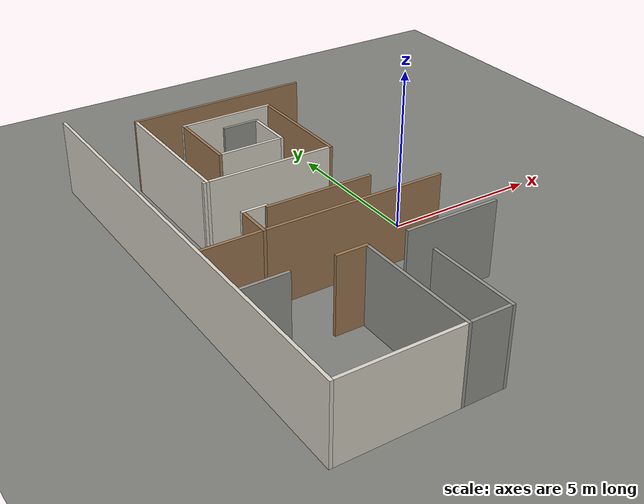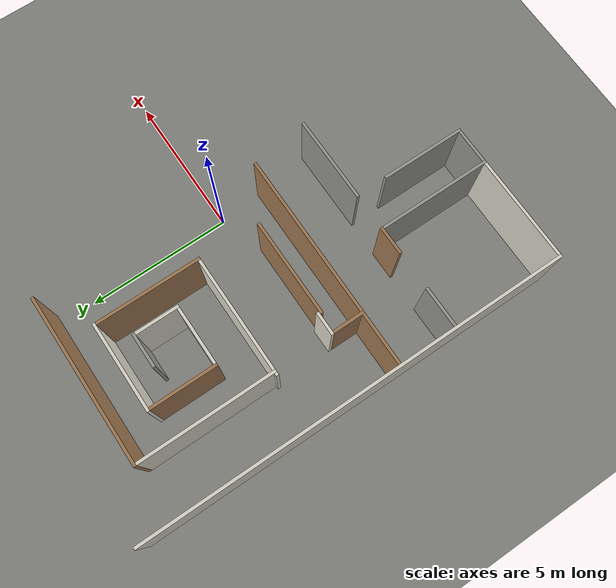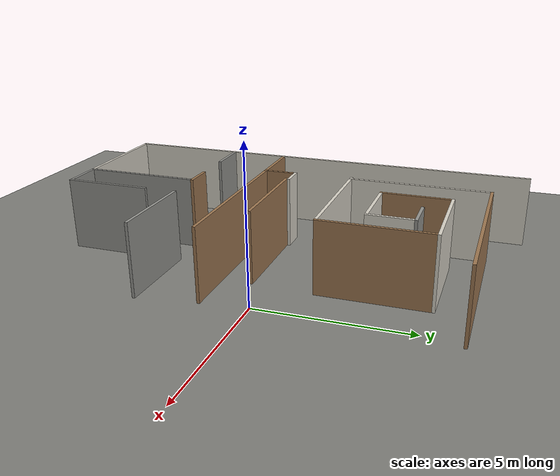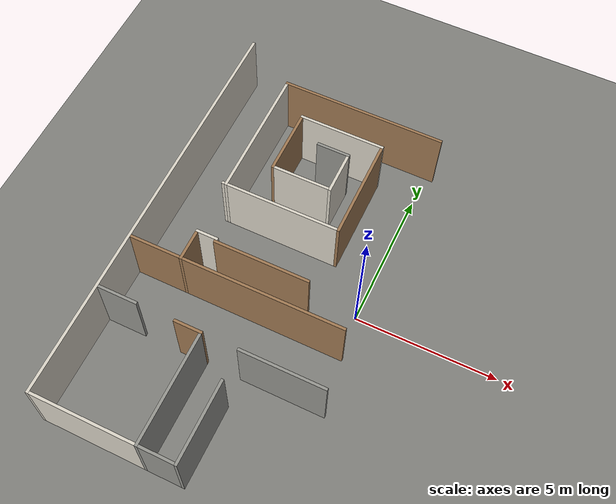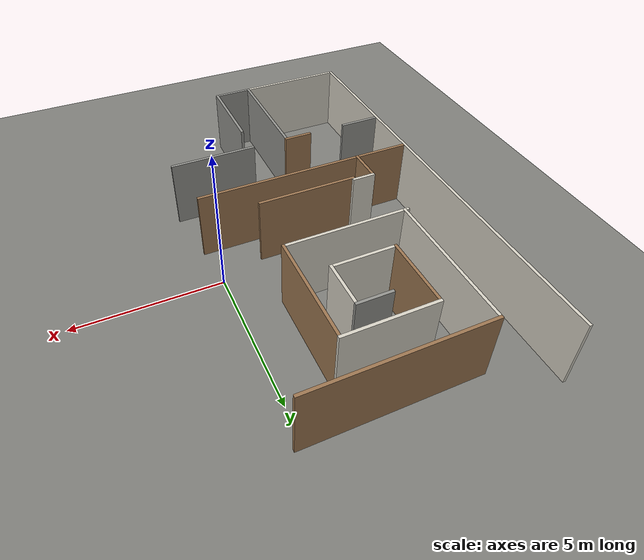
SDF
<sdf version="1.10">
 <world name="arena_world">
  <model name="ground_plane">
   <static>true</static>
   <link name="link">
    <collision name="collision">
     <geometry><plane><normal>0 0 1</normal><size>15 15</size></plane></geometry>
     <surface>
      <friction><ode><mu>0.80000000000000004</mu><mu2>0.80000000000000004</mu2></ode></friction>
      <contact><ode><kp>1000000000</kp><kd>1</kd></ode></contact>
     </surface>
    </collision>
    <visual name="visual">
     <geometry><plane><normal>0 0 1</normal><size>15 15</size></plane></geometry>
     <material>
      <ambient>0.449999988 0.449999988 0.439999998 1</ambient>
      <diffuse>0.5 0.5 0.479999989 1</diffuse>
      <specular>0.150000006 0.150000006 0.150000006 1</specular>
      <pbr><metal><roughness>0.95</roughness><metalness>0.0</metalness></metal></pbr>
     </material>
    </visual>
    <inertial>
     <mass>1</mass>
     <inertia><ixx>1</ixx><ixy>0</ixy><ixz>0</ixz><iyy>1</iyy><iyz>0</iyz><izz>1</izz></inertia>
    </inertial>
   </link>
  </model>
  <model name="wall_001">
   <static>true</static>
   <pose>-7.4500000000000002 -0.050000000000000003 1.22 0 0 0</pose>
   <link name="link">
    <collision name="collision">
     <geometry><box><size>0.10000000000000001 14.9 2.4399999999999999</size></box></geometry>
     <surface>
      <friction><ode><mu>0.69999999999999996</mu><mu2>0.69999999999999996</mu2></ode></friction>
      <contact>
       <ode><kp>1000000000</kp><kd>1</kd><max_vel>0.10000000000000001</max_vel><min_depth>0.001</min_depth></ode>
      </contact>
      <bounce><restitution_coefficient>0</restitution_coefficient><threshold>1000000</threshold></bounce>
     </surface>
    </collision>
    <visual name="visual">
     <geometry><box><size>0.10000000000000001 14.9 2.4399999999999999</size></box></geometry>
     <material>
      <ambient>0.819999993 0.800000012 0.75 1</ambient>
      <diffuse>0.850000024 0.829999983 0.779999971 1</diffuse>
      <specular>0.0500000007 0.0500000007 0.0500000007 1</specular>
      <pbr><metal><roughness>0.85</roughness><metalness>0.0</metalness></metal></pbr>
     </material>
    </visual>
    <inertial>
     <mass>1</mass>
     <inertia><ixx>1</ixx><ixy>0</ixy><ixz>0</ixz><iyy>1</iyy><iyz>0</iyz><izz>1</izz></inertia>
    </inertial>
   </link>
  </model>
  <model name="wall_003">
   <static>true</static>
   <pose>-2.6499999999999999 6.25 1.22 0 0 0</pose>
   <link name="link">
    <collision name="collision">
     <geometry><box><size>5.9000000000000004 0.10000000000000001 2.4399999999999999</size></box></geometry>
     <surface>
      <friction><ode><mu>0.69999999999999996</mu><mu2>0.69999999999999996</mu2></ode></friction>
      <contact>
       <ode><kp>1000000000</kp><kd>1</kd><max_vel>0.10000000000000001</max_vel><min_depth>0.001</min_depth></ode>
      </contact>
      <bounce><restitution_coefficient>0</restitution_coefficient><threshold>1000000</threshold></bounce>
     </surface>
    </collision>
    <visual name="visual">
     <geometry><box><size>5.9000000000000004 0.10000000000000001 2.4399999999999999</size></box></geometry>
     <material>
      <ambient>0.550000012 0.419999987 0.280000001 1</ambient>
      <diffuse>0.620000005 0.469999999 0.319999993 1</diffuse>
      <specular>0.0599999987 0.0599999987 0.0599999987 1</specular>
      <pbr><metal><roughness>0.7</roughness><metalness>0.0</metalness></metal></pbr>
     </material>
    </visual>
    <inertial>
     <mass>1</mass>
     <inertia><ixx>1</ixx><ixy>0</ixy><ixz>0</ixz><iyy>1</iyy><iyz>0</iyz><izz>1</izz></inertia>
    </inertial>
   </link>
  </model>
  <model name="wall_005">
   <static>true</static>
   <pose>-5.5499999999999998 3.8500000000000001 1.22 0 0 0</pose>
   <link name="link">
    <collision name="collision">
     <geometry><box><size>0.10000000000000001 4.7000000000000002 2.4399999999999999</size></box></geometry>
     <surface>
      <friction><ode><mu>0.69999999999999996</mu><mu2>0.69999999999999996</mu2></ode></friction>
      <contact>
       <ode><kp>1000000000</kp><kd>1</kd><max_vel>0.10000000000000001</max_vel><min_depth>0.001</min_depth></ode>
      </contact>
      <bounce><restitution_coefficient>0</restitution_coefficient><threshold>1000000</threshold></bounce>
     </surface>
    </collision>
    <visual name="visual">
     <geometry><box><size>0.10000000000000001 4.7000000000000002 2.4399999999999999</size></box></geometry>
     <material>
      <ambient>0.819999993 0.800000012 0.75 1</ambient>
      <diffuse>0.850000024 0.829999983 0.779999971 1</diffuse>
      <specular>0.0500000007 0.0500000007 0.0500000007 1</specular>
      <pbr><metal><roughness>0.85</roughness><metalness>0.0</metalness></metal></pbr>
     </material>
    </visual>
    <inertial>
     <mass>1</mass>
     <inertia><ixx>1</ixx><ixy>0</ixy><ixz>0</ixz><iyy>1</iyy><iyz>0</iyz><izz>1</izz></inertia>
    </inertial>
   </link>
  </model>
  <model name="wall_009">
   <static>true</static>
   <pose>-2.9500000000000002 5.1500000000000004 1.22 0 0 0</pose>
   <link name="link">
    <collision name="collision">
     <geometry><box><size>3.1000000000000001 0.10000000000000001 2.4399999999999999</size></box></geometry>
     <surface>
      <friction><ode><mu>0.69999999999999996</mu><mu2>0.69999999999999996</mu2></ode></friction>
      <contact>
       <ode><kp>1000000000</kp><kd>1</kd><max_vel>0.10000000000000001</max_vel><min_depth>0.001</min_depth></ode>
      </contact>
      <bounce><restitution_coefficient>0</restitution_coefficient><threshold>1000000</threshold></bounce>
     </surface>
    </collision>
    <visual name="visual">
     <geometry><box><size>3.1000000000000001 0.10000000000000001 2.4399999999999999</size></box></geometry>
     <material>
      <ambient>0.819999993 0.800000012 0.75 1</ambient>
      <diffuse>0.850000024 0.829999983 0.779999971 1</diffuse>
      <specular>0.0500000007 0.0500000007 0.0500000007 1</specular>
      <pbr><metal><roughness>0.85</roughness><metalness>0.0</metalness></metal></pbr>
     </material>
    </visual>
    <inertial>
     <mass>1</mass>
     <inertia><ixx>1</ixx><ixy>0</ixy><ixz>0</ixz><iyy>1</iyy><iyz>0</iyz><izz>1</izz></inertia>
    </inertial>
   </link>
  </model>
  <model name="wall_010">
   <static>true</static>
   <pose>-4.4500000000000002 3.9500000000000002 1.22 0 0 0</pose>
   <link name="link">
    <collision name="collision">
     <geometry><box><size>0.10000000000000001 2.2999999999999998 2.4399999999999999</size></box></geometry>
     <surface>
      <friction><ode><mu>0.69999999999999996</mu><mu2>0.69999999999999996</mu2></ode></friction>
      <contact>
       <ode><kp>1000000000</kp><kd>1</kd><max_vel>0.10000000000000001</max_vel><min_depth>0.001</min_depth></ode>
      </contact>
      <bounce><restitution_coefficient>0</restitution_coefficient><threshold>1000000</threshold></bounce>
     </surface>
    </collision>
    <visual name="visual">
     <geometry><box><size>0.10000000000000001 2.2999999999999998 2.4399999999999999</size></box></geometry>
     <material>
      <ambient>0.550000012 0.419999987 0.280000001 1</ambient>
      <diffuse>0.620000005 0.469999999 0.319999993 1</diffuse>
      <specular>0.0599999987 0.0599999987 0.0599999987 1</specular>
      <pbr><metal><roughness>0.7</roughness><metalness>0.0</metalness></metal></pbr>
     </material>
    </visual>
    <inertial>
     <mass>1</mass>
     <inertia><ixx>1</ixx><ixy>0</ixy><ixz>0</ixz><iyy>1</iyy><iyz>0</iyz><izz>1</izz></inertia>
    </inertial>
   </link>
  </model>
  <model name="wall_011">
   <static>true</static>
   <pose>-1.45 3.2999999999999998 1.22 0 0 0</pose>
   <link name="link">
    <collision name="collision">
     <geometry><box><size>0.10000000000000001 3.6000000000000001 2.4399999999999999</size></box></geometry>
     <surface>
      <friction><ode><mu>0.69999999999999996</mu><mu2>0.69999999999999996</mu2></ode></friction>
      <contact>
       <ode><kp>1000000000</kp><kd>1</kd><max_vel>0.10000000000000001</max_vel><min_depth>0.001</min_depth></ode>
      </contact>
      <bounce><restitution_coefficient>0</restitution_coefficient><threshold>1000000</threshold></bounce>
     </surface>
    </collision>
    <visual name="visual">
     <geometry><box><size>0.10000000000000001 3.6000000000000001 2.4399999999999999</size></box></geometry>
     <material>
      <ambient>0.550000012 0.419999987 0.280000001 1</ambient>
      <diffuse>0.620000005 0.469999999 0.319999993 1</diffuse>
      <specular>0.0599999987 0.0599999987 0.0599999987 1</specular>
      <pbr><metal><roughness>0.7</roughness><metalness>0.0</metalness></metal></pbr>
     </material>
    </visual>
    <inertial>
     <mass>1</mass>
     <inertia><ixx>1</ixx><ixy>0</ixy><ixz>0</ixz><iyy>1</iyy><iyz>0</iyz><izz>1</izz></inertia>
    </inertial>
   </link>
  </model>
  <model name="wall_015">
   <static>true</static>
   <pose>-2.8999999999999999 4.3499999999999996 1.22 0 0 0</pose>
   <link name="link">
    <collision name="collision">
     <geometry><box><size>1.2 0.10000000000000001 2.4399999999999999</size></box></geometry>
     <surface>
      <friction><ode><mu>0.69999999999999996</mu><mu2>0.69999999999999996</mu2></ode></friction>
      <contact>
       <ode><kp>1000000000</kp><kd>1</kd><max_vel>0.10000000000000001</max_vel><min_depth>0.001</min_depth></ode>
      </contact>
      <bounce><restitution_coefficient>0</restitution_coefficient><threshold>1000000</threshold></bounce>
     </surface>
    </collision>
    <visual name="visual">
     <geometry><box><size>1.2 0.10000000000000001 2.4399999999999999</size></box></geometry>
     <material>
      <ambient>0.550000012 0.550000012 0.529999971 1</ambient>
      <diffuse>0.579999983 0.579999983 0.560000002 1</diffuse>
      <specular>0.0799999982 0.0799999982 0.0799999982 1</specular>
      <pbr><metal><roughness>0.9</roughness><metalness>0.0</metalness></metal></pbr>
     </material>
    </visual>
    <inertial>
     <mass>1</mass>
     <inertia><ixx>1</ixx><ixy>0</ixy><ixz>0</ixz><iyy>1</iyy><iyz>0</iyz><izz>1</izz></inertia>
    </inertial>
   </link>
  </model>
  <model name="wall_016">
   <static>true</static>
   <pose>-2.3500000000000001 3.5499999999999998 1.22 0 0 0</pose>
   <link name="link">
    <collision name="collision">
     <geometry><box><size>0.10000000000000001 1.5 2.4399999999999999</size></box></geometry>
     <surface>
      <friction><ode><mu>0.69999999999999996</mu><mu2>0.69999999999999996</mu2></ode></friction>
      <contact>
       <ode><kp>1000000000</kp><kd>1</kd><max_vel>0.10000000000000001</max_vel><min_depth>0.001</min_depth></ode>
      </contact>
      <bounce><restitution_coefficient>0</restitution_coefficient><threshold>1000000</threshold></bounce>
     </surface>
    </collision>
    <visual name="visual">
     <geometry><box><size>0.10000000000000001 1.5 2.4399999999999999</size></box></geometry>
     <material>
      <ambient>0.819999993 0.800000012 0.75 1</ambient>
      <diffuse>0.850000024 0.829999983 0.779999971 1</diffuse>
      <specular>0.0500000007 0.0500000007 0.0500000007 1</specular>
      <pbr><metal><roughness>0.85</roughness><metalness>0.0</metalness></metal></pbr>
     </material>
    </visual>
    <inertial>
     <mass>1</mass>
     <inertia><ixx>1</ixx><ixy>0</ixy><ixz>0</ixz><iyy>1</iyy><iyz>0</iyz><izz>1</izz></inertia>
    </inertial>
   </link>
  </model>
  <model name="wall_017">
   <static>true</static>
   <pose>-3.3999999999999999 2.8500000000000001 1.22 0 0 0</pose>
   <link name="link">
    <collision name="collision">
     <geometry><box><size>2 0.10000000000000001 2.4399999999999999</size></box></geometry>
     <surface>
      <friction><ode><mu>0.69999999999999996</mu><mu2>0.69999999999999996</mu2></ode></friction>
      <contact>
       <ode><kp>1000000000</kp><kd>1</kd><max_vel>0.10000000000000001</max_vel><min_depth>0.001</min_depth></ode>
      </contact>
      <bounce><restitution_coefficient>0</restitution_coefficient><threshold>1000000</threshold></bounce>
     </surface>
    </collision>
    <visual name="visual">
     <geometry><box><size>2 0.10000000000000001 2.4399999999999999</size></box></geometry>
     <material>
      <ambient>0.819999993 0.800000012 0.75 1</ambient>
      <diffuse>0.850000024 0.829999983 0.779999971 1</diffuse>
      <specular>0.0500000007 0.0500000007 0.0500000007 1</specular>
      <pbr><metal><roughness>0.85</roughness><metalness>0.0</metalness></metal></pbr>
     </material>
    </visual>
    <inertial>
     <mass>1</mass>
     <inertia><ixx>1</ixx><ixy>0</ixy><ixz>0</ixz><iyy>1</iyy><iyz>0</iyz><izz>1</izz></inertia>
    </inertial>
   </link>
  </model>
  <model name="wall_019">
   <static>true</static>
   <pose>-5.6500000000000004 1.55 1.22 0 0 0</pose>
   <link name="link">
    <collision name="collision">
     <geometry><box><size>0.10000000000000001 0.10000000000000001 2.4399999999999999</size></box></geometry>
     <surface>
      <friction><ode><mu>0.69999999999999996</mu><mu2>0.69999999999999996</mu2></ode></friction>
      <contact>
       <ode><kp>1000000000</kp><kd>1</kd><max_vel>0.10000000000000001</max_vel><min_depth>0.001</min_depth></ode>
      </contact>
      <bounce><restitution_coefficient>0</restitution_coefficient><threshold>1000000</threshold></bounce>
     </surface>
    </collision>
    <visual name="visual">
     <geometry><box><size>0.10000000000000001 0.10000000000000001 2.4399999999999999</size></box></geometry>
     <material>
      <ambient>0.819999993 0.800000012 0.75 1</ambient>
      <diffuse>0.850000024 0.829999983 0.779999971 1</diffuse>
      <specular>0.0500000007 0.0500000007 0.0500000007 1</specular>
      <pbr><metal><roughness>0.85</roughness><metalness>0.0</metalness></metal></pbr>
     </material>
    </visual>
    <inertial>
     <mass>1</mass>
     <inertia><ixx>1</ixx><ixy>0</ixy><ixz>0</ixz><iyy>1</iyy><iyz>0</iyz><izz>1</izz></inertia>
    </inertial>
   </link>
  </model>
  <model name="wall_020">
   <static>true</static>
   <pose>-3.5 1.55 1.22 0 0 0</pose>
   <link name="link">
    <collision name="collision">
     <geometry><box><size>4 0.10000000000000001 2.4399999999999999</size></box></geometry>
     <surface>
      <friction><ode><mu>0.69999999999999996</mu><mu2>0.69999999999999996</mu2></ode></friction>
      <contact>
       <ode><kp>1000000000</kp><kd>1</kd><max_vel>0.10000000000000001</max_vel><min_depth>0.001</min_depth></ode>
      </contact>
      <bounce><restitution_coefficient>0</restitution_coefficient><threshold>1000000</threshold></bounce>
     </surface>
    </collision>
    <visual name="visual">
     <geometry><box><size>4 0.10000000000000001 2.4399999999999999</size></box></geometry>
     <material>
      <ambient>0.819999993 0.800000012 0.75 1</ambient>
      <diffuse>0.850000024 0.829999983 0.779999971 1</diffuse>
      <specular>0.0500000007 0.0500000007 0.0500000007 1</specular>
      <pbr><metal><roughness>0.85</roughness><metalness>0.0</metalness></metal></pbr>
     </material>
    </visual>
    <inertial>
     <mass>1</mass>
     <inertia><ixx>1</ixx><ixy>0</ixy><ixz>0</ixz><iyy>1</iyy><iyz>0</iyz><izz>1</izz></inertia>
    </inertial>
   </link>
  </model>
  <model name="wall_025">
   <static>true</static>
   <pose>-5.2000000000000002 -0.45000000000000001 1.22 0 0 0</pose>
   <link name="link">
    <collision name="collision">
     <geometry><box><size>0.80000000000000004 0.10000000000000001 2.4399999999999999</size></box></geometry>
     <surface>
      <friction><ode><mu>0.69999999999999996</mu><mu2>0.69999999999999996</mu2></ode></friction>
      <contact>
       <ode><kp>1000000000</kp><kd>1</kd><max_vel>0.10000000000000001</max_vel><min_depth>0.001</min_depth></ode>
      </contact>
      <bounce><restitution_coefficient>0</restitution_coefficient><threshold>1000000</threshold></bounce>
     </surface>
    </collision>
    <visual name="visual">
     <geometry><box><size>0.80000000000000004 0.10000000000000001 2.4399999999999999</size></box></geometry>
     <material>
      <ambient>0.819999993 0.800000012 0.75 1</ambient>
      <diffuse>0.850000024 0.829999983 0.779999971 1</diffuse>
      <specular>0.0500000007 0.0500000007 0.0500000007 1</specular>
      <pbr><metal><roughness>0.85</roughness><metalness>0.0</metalness></metal></pbr>
     </material>
    </visual>
    <inertial>
     <mass>1</mass>
     <inertia><ixx>1</ixx><ixy>0</ixy><ixz>0</ixz><iyy>1</iyy><iyz>0</iyz><izz>1</izz></inertia>
    </inertial>
   </link>
  </model>
  <model name="wall_026">
   <static>true</static>
   <pose>-5.5499999999999998 -1.05 1.22 0 0 0</pose>
   <link name="link">
    <collision name="collision">
     <geometry><box><size>0.10000000000000001 1.1000000000000001 2.4399999999999999</size></box></geometry>
     <surface>
      <friction><ode><mu>0.69999999999999996</mu><mu2>0.69999999999999996</mu2></ode></friction>
      <contact>
       <ode><kp>1000000000</kp><kd>1</kd><max_vel>0.10000000000000001</max_vel><min_depth>0.001</min_depth></ode>
      </contact>
      <bounce><restitution_coefficient>0</restitution_coefficient><threshold>1000000</threshold></bounce>
     </surface>
    </collision>
    <visual name="visual">
     <geometry><box><size>0.10000000000000001 1.1000000000000001 2.4399999999999999</size></box></geometry>
     <material>
      <ambient>0.550000012 0.419999987 0.280000001 1</ambient>
      <diffuse>0.620000005 0.469999999 0.319999993 1</diffuse>
      <specular>0.0599999987 0.0599999987 0.0599999987 1</specular>
      <pbr><metal><roughness>0.7</roughness><metalness>0.0</metalness></metal></pbr>
     </material>
    </visual>
    <inertial>
     <mass>1</mass>
     <inertia><ixx>1</ixx><ixy>0</ixy><ixz>0</ixz><iyy>1</iyy><iyz>0</iyz><izz>1</izz></inertia>
    </inertial>
   </link>
  </model>
  <model name="wall_027">
   <static>true</static>
   <pose>-3.2000000000000002 -0.55000000000000004 1.22 0 0 0</pose>
   <link name="link">
    <collision name="collision">
     <geometry><box><size>3.3999999999999999 0.10000000000000001 2.4399999999999999</size></box></geometry>
     <surface>
      <friction><ode><mu>0.69999999999999996</mu><mu2>0.69999999999999996</mu2></ode></friction>
      <contact>
       <ode><kp>1000000000</kp><kd>1</kd><max_vel>0.10000000000000001</max_vel><min_depth>0.001</min_depth></ode>
      </contact>
      <bounce><restitution_coefficient>0</restitution_coefficient><threshold>1000000</threshold></bounce>
     </surface>
    </collision>
    <visual name="visual">
     <geometry><box><size>3.3999999999999999 0.10000000000000001 2.4399999999999999</size></box></geometry>
     <material>
      <ambient>0.550000012 0.419999987 0.280000001 1</ambient>
      <diffuse>0.620000005 0.469999999 0.319999993 1</diffuse>
      <specular>0.0599999987 0.0599999987 0.0599999987 1</specular>
      <pbr><metal><roughness>0.7</roughness><metalness>0.0</metalness></metal></pbr>
     </material>
    </visual>
    <inertial>
     <mass>1</mass>
     <inertia><ixx>1</ixx><ixy>0</ixy><ixz>0</ixz><iyy>1</iyy><iyz>0</iyz><izz>1</izz></inertia>
    </inertial>
   </link>
  </model>
  <model name="wall_028">
   <static>true</static>
   <pose>-6.5 -1.55 1.22 0 0 0</pose>
   <link name="link">
    <collision name="collision">
     <geometry><box><size>1.8 0.10000000000000001 2.4399999999999999</size></box></geometry>
     <surface>
      <friction><ode><mu>0.69999999999999996</mu><mu2>0.69999999999999996</mu2></ode></friction>
      <contact>
       <ode><kp>1000000000</kp><kd>1</kd><max_vel>0.10000000000000001</max_vel><min_depth>0.001</min_depth></ode>
      </contact>
      <bounce><restitution_coefficient>0</restitution_coefficient><threshold>1000000</threshold></bounce>
     </surface>
    </collision>
    <visual name="visual">
     <geometry><box><size>1.8 0.10000000000000001 2.4399999999999999</size></box></geometry>
     <material>
      <ambient>0.550000012 0.419999987 0.280000001 1</ambient>
      <diffuse>0.620000005 0.469999999 0.319999993 1</diffuse>
      <specular>0.0599999987 0.0599999987 0.0599999987 1</specular>
      <pbr><metal><roughness>0.7</roughness><metalness>0.0</metalness></metal></pbr>
     </material>
    </visual>
    <inertial>
     <mass>1</mass>
     <inertia><ixx>1</ixx><ixy>0</ixy><ixz>0</ixz><iyy>1</iyy><iyz>0</iyz><izz>1</izz></inertia>
    </inertial>
   </link>
  </model>
  <model name="wall_029">
   <static>true</static>
   <pose>-2.6499999999999999 -1.55 1.22 0 0 0</pose>
   <link name="link">
    <collision name="collision">
     <geometry><box><size>5.7000000000000002 0.10000000000000001 2.4399999999999999</size></box></geometry>
     <surface>
      <friction><ode><mu>0.69999999999999996</mu><mu2>0.69999999999999996</mu2></ode></friction>
      <contact>
       <ode><kp>1000000000</kp><kd>1</kd><max_vel>0.10000000000000001</max_vel><min_depth>0.001</min_depth></ode>
      </contact>
      <bounce><restitution_coefficient>0</restitution_coefficient><threshold>1000000</threshold></bounce>
     </surface>
    </collision>
    <visual name="visual">
     <geometry><box><size>5.7000000000000002 0.10000000000000001 2.4399999999999999</size></box></geometry>
     <material>
      <ambient>0.550000012 0.419999987 0.280000001 1</ambient>
      <diffuse>0.620000005 0.469999999 0.319999993 1</diffuse>
      <specular>0.0599999987 0.0599999987 0.0599999987 1</specular>
      <pbr><metal><roughness>0.7</roughness><metalness>0.0</metalness></metal></pbr>
     </material>
    </visual>
    <inertial>
     <mass>1</mass>
     <inertia><ixx>1</ixx><ixy>0</ixy><ixz>0</ixz><iyy>1</iyy><iyz>0</iyz><izz>1</izz></inertia>
    </inertial>
   </link>
  </model>
  <model name="wall_032">
   <static>true</static>
   <pose>-6.7000000000000002 -3.5499999999999998 1.22 0 0 0</pose>
   <link name="link">
    <collision name="collision">
     <geometry><box><size>1.3999999999999999 0.10000000000000001 2.4399999999999999</size></box></geometry>
     <surface>
      <friction><ode><mu>0.69999999999999996</mu><mu2>0.69999999999999996</mu2></ode></friction>
      <contact>
       <ode><kp>1000000000</kp><kd>1</kd><max_vel>0.10000000000000001</max_vel><min_depth>0.001</min_depth></ode>
      </contact>
      <bounce><restitution_coefficient>0</restitution_coefficient><threshold>1000000</threshold></bounce>
     </surface>
    </collision>
    <visual name="visual">
     <geometry><box><size>1.3999999999999999 0.10000000000000001 2.4399999999999999</size></box></geometry>
     <material>
      <ambient>0.550000012 0.550000012 0.529999971 1</ambient>
      <diffuse>0.579999983 0.579999983 0.560000002 1</diffuse>
      <specular>0.0799999982 0.0799999982 0.0799999982 1</specular>
      <pbr><metal><roughness>0.9</roughness><metalness>0.0</metalness></metal></pbr>
     </material>
    </visual>
    <inertial>
     <mass>1</mass>
     <inertia><ixx>1</ixx><ixy>0</ixy><ixz>0</ixz><iyy>1</iyy><iyz>0</iyz><izz>1</izz></inertia>
    </inertial>
   </link>
  </model>
  <model name="wall_033">
   <static>true</static>
   <pose>-4.2000000000000002 -3.5499999999999998 1.22 0 0 0</pose>
   <link name="link">
    <collision name="collision">
     <geometry><box><size>1 0.10000000000000001 2.4399999999999999</size></box></geometry>
     <surface>
      <friction><ode><mu>0.69999999999999996</mu><mu2>0.69999999999999996</mu2></ode></friction>
      <contact>
       <ode><kp>1000000000</kp><kd>1</kd><max_vel>0.10000000000000001</max_vel><min_depth>0.001</min_depth></ode>
      </contact>
      <bounce><restitution_coefficient>0</restitution_coefficient><threshold>1000000</threshold></bounce>
     </surface>
    </collision>
    <visual name="visual">
     <geometry><box><size>1 0.10000000000000001 2.4399999999999999</size></box></geometry>
     <material>
      <ambient>0.550000012 0.419999987 0.280000001 1</ambient>
      <diffuse>0.620000005 0.469999999 0.319999993 1</diffuse>
      <specular>0.0599999987 0.0599999987 0.0599999987 1</specular>
      <pbr><metal><roughness>0.7</roughness><metalness>0.0</metalness></metal></pbr>
     </material>
    </visual>
    <inertial>
     <mass>1</mass>
     <inertia><ixx>1</ixx><ixy>0</ixy><ixz>0</ixz><iyy>1</iyy><iyz>0</iyz><izz>1</izz></inertia>
    </inertial>
   </link>
  </model>
  <model name="wall_034">
   <static>true</static>
   <pose>-1 -3.5499999999999998 1.22 0 0 0</pose>
   <link name="link">
    <collision name="collision">
     <geometry><box><size>3 0.10000000000000001 2.4399999999999999</size></box></geometry>
     <surface>
      <friction><ode><mu>0.69999999999999996</mu><mu2>0.69999999999999996</mu2></ode></friction>
      <contact>
       <ode><kp>1000000000</kp><kd>1</kd><max_vel>0.10000000000000001</max_vel><min_depth>0.001</min_depth></ode>
      </contact>
      <bounce><restitution_coefficient>0</restitution_coefficient><threshold>1000000</threshold></bounce>
     </surface>
    </collision>
    <visual name="visual">
     <geometry><box><size>3 0.10000000000000001 2.4399999999999999</size></box></geometry>
     <material>
      <ambient>0.550000012 0.550000012 0.529999971 1</ambient>
      <diffuse>0.579999983 0.579999983 0.560000002 1</diffuse>
      <specular>0.0799999982 0.0799999982 0.0799999982 1</specular>
      <pbr><metal><roughness>0.9</roughness><metalness>0.0</metalness></metal></pbr>
     </material>
    </visual>
    <inertial>
     <mass>1</mass>
     <inertia><ixx>1</ixx><ixy>0</ixy><ixz>0</ixz><iyy>1</iyy><iyz>0</iyz><izz>1</izz></inertia>
    </inertial>
   </link>
  </model>
  <model name="wall_038">
   <static>true</static>
   <pose>-3.75 -5.5499999999999998 1.22 0 0 0</pose>
   <link name="link">
    <collision name="collision">
     <geometry><box><size>0.10000000000000001 3.8999999999999999 2.4399999999999999</size></box></geometry>
     <surface>
      <friction><ode><mu>0.69999999999999996</mu><mu2>0.69999999999999996</mu2></ode></friction>
      <contact>
       <ode><kp>1000000000</kp><kd>1</kd><max_vel>0.10000000000000001</max_vel><min_depth>0.001</min_depth></ode>
      </contact>
      <bounce><restitution_coefficient>0</restitution_coefficient><threshold>1000000</threshold></bounce>
     </surface>
    </collision>
    <visual name="visual">
     <geometry><box><size>0.10000000000000001 3.8999999999999999 2.4399999999999999</size></box></geometry>
     <material>
      <ambient>0.550000012 0.550000012 0.529999971 1</ambient>
      <diffuse>0.579999983 0.579999983 0.560000002 1</diffuse>
      <specular>0.0799999982 0.0799999982 0.0799999982 1</specular>
      <pbr><metal><roughness>0.9</roughness><metalness>0.0</metalness></metal></pbr>
     </material>
    </visual>
    <inertial>
     <mass>1</mass>
     <inertia><ixx>1</ixx><ixy>0</ixy><ixz>0</ixz><iyy>1</iyy><iyz>0</iyz><izz>1</izz></inertia>
    </inertial>
   </link>
  </model>
  <model name="wall_040">
   <static>true</static>
   <pose>-2.4500000000000002 -6.0499999999999998 1.22 0 0 0</pose>
   <link name="link">
    <collision name="collision">
     <geometry><box><size>0.10000000000000001 2.8999999999999999 2.4399999999999999</size></box></geometry>
     <surface>
      <friction><ode><mu>0.69999999999999996</mu><mu2>0.69999999999999996</mu2></ode></friction>
      <contact>
       <ode><kp>1000000000</kp><kd>1</kd><max_vel>0.10000000000000001</max_vel><min_depth>0.001</min_depth></ode>
      </contact>
      <bounce><restitution_coefficient>0</restitution_coefficient><threshold>1000000</threshold></bounce>
     </surface>
    </collision>
    <visual name="visual">
     <geometry><box><size>0.10000000000000001 2.8999999999999999 2.4399999999999999</size></box></geometry>
     <material>
      <ambient>0.550000012 0.550000012 0.529999971 1</ambient>
      <diffuse>0.579999983 0.579999983 0.560000002 1</diffuse>
      <specular>0.0799999982 0.0799999982 0.0799999982 1</specular>
      <pbr><metal><roughness>0.9</roughness><metalness>0.0</metalness></metal></pbr>
     </material>
    </visual>
    <inertial>
     <mass>1</mass>
     <inertia><ixx>1</ixx><ixy>0</ixy><ixz>0</ixz><iyy>1</iyy><iyz>0</iyz><izz>1</izz></inertia>
    </inertial>
   </link>
  </model>
  <model name="wall_042">
   <static>true</static>
   <pose>-5.5999999999999996 -7.4500000000000002 1.22 0 0 0</pose>
   <link name="link">
    <collision name="collision">
     <geometry><box><size>3.6000000000000001 0.10000000000000001 2.4399999999999999</size></box></geometry>
     <surface>
      <friction><ode><mu>0.69999999999999996</mu><mu2>0.69999999999999996</mu2></ode></friction>
      <contact>
       <ode><kp>1000000000</kp><kd>1</kd><max_vel>0.10000000000000001</max_vel><min_depth>0.001</min_depth></ode>
      </contact>
      <bounce><restitution_coefficient>0</restitution_coefficient><threshold>1000000</threshold></bounce>
     </surface>
    </collision>
    <visual name="visual">
     <geometry><box><size>3.6000000000000001 0.10000000000000001 2.4399999999999999</size></box></geometry>
     <material>
      <ambient>0.819999993 0.800000012 0.75 1</ambient>
      <diffuse>0.850000024 0.829999983 0.779999971 1</diffuse>
      <specular>0.0500000007 0.0500000007 0.0500000007 1</specular>
      <pbr><metal><roughness>0.85</roughness><metalness>0.0</metalness></metal></pbr>
     </material>
    </visual>
    <inertial>
     <mass>1</mass>
     <inertia><ixx>1</ixx><ixy>0</ixy><ixz>0</ixz><iyy>1</iyy><iyz>0</iyz><izz>1</izz></inertia>
    </inertial>
   </link>
  </model>
  <model name="wall_043">
   <static>true</static>
   <pose>-3.1000000000000001 -7.4500000000000002 1.22 0 0 0</pose>
   <link name="link">
    <collision name="collision">
     <geometry><box><size>1.2 0.10000000000000001 2.4399999999999999</size></box></geometry>
     <surface>
      <friction><ode><mu>0.69999999999999996</mu><mu2>0.69999999999999996</mu2></ode></friction>
      <contact>
       <ode><kp>1000000000</kp><kd>1</kd><max_vel>0.10000000000000001</max_vel><min_depth>0.001</min_depth></ode>
      </contact>
      <bounce><restitution_coefficient>0</restitution_coefficient><threshold>1000000</threshold></bounce>
     </surface>
    </collision>
    <visual name="visual">
     <geometry><box><size>1.2 0.10000000000000001 2.4399999999999999</size></box></geometry>
     <material>
      <ambient>0.550000012 0.550000012 0.529999971 1</ambient>
      <diffuse>0.579999983 0.579999983 0.560000002 1</diffuse>
      <specular>0.0799999982 0.0799999982 0.0799999982 1</specular>
      <pbr><metal><roughness>0.9</roughness><metalness>0.0</metalness></metal></pbr>
     </material>
    </visual>
    <inertial>
     <mass>1</mass>
     <inertia><ixx>1</ixx><ixy>0</ixy><ixz>0</ixz><iyy>1</iyy><iyz>0</iyz><izz>1</izz></inertia>
    </inertial>
   </link>
  </model>
 </world>
</sdf>
